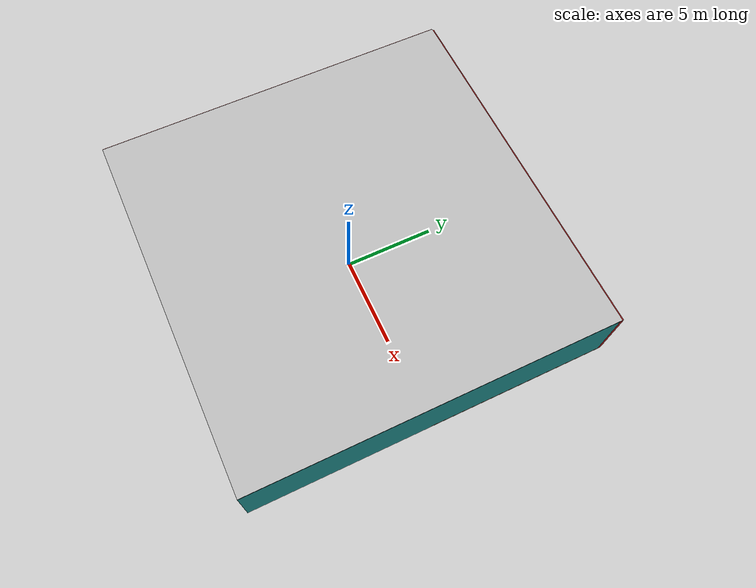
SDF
<sdf version="1.4">
 <world name="default">
  <physics type="ode">
   <max_step_size>0.001</max_step_size>
   <real_time_factor>1</real_time_factor>
   <real_time_update_rate>1000</real_time_update_rate>
   <gravity>0 0 -9.8</gravity>
  </physics>
  <scene><ambient>0.4 0.4 0.4 1</ambient><background>0.7 0.7 0.7 1</background><shadows>1</shadows></scene>
  <model name="Surrounding">
   <static>1</static>
   <link name="Ceiling">
    <collision name="Ceiling_Collision"><geometry><box><size>20 20 0.1</size></box></geometry></collision>
    <visual name="Ceiling_Visual">
     <geometry><box><size>20 20 0.1</size></box></geometry>
     <material>
      <script><uri>file://media/materials/scripts/gazebo.material</uri><name>Gazebo/Pioneer2Body</name></script>
     </material>
    </visual>
    <pose>0 0 4.05 0 0 0</pose>
   </link>
   <link name="Wall_South">
    <collision name="Wall_South_Collision">
     <geometry><box><size>20 0 4</size></box></geometry>
     <pose>0 0 2 0 -0 0</pose>
    </collision>
    <visual name="Wall_South_Visual">
     <pose>0 0 2 0 -0 0</pose>
     <geometry><box><size>20 0 4</size></box></geometry>
     <material>
      <script><uri>file://media/materials/scripts/gazebo.material</uri><name>Gazebo/CloudySky</name></script>
     </material>
    </visual>
    <velocity_decay><linear>0</linear><angular>0</angular></velocity_decay>
    <pose>0 -10 0 0 -0 0</pose>
   </link>
   <link name="Wall_East">
    <collision name="Wall_21_Collision">
     <geometry><box><size>20 0 4</size></box></geometry>
     <pose>0 0 2 0 -0 0</pose>
    </collision>
    <visual name="Wall_21_Visual">
     <pose>0 0 2 0 -0 0</pose>
     <geometry><box><size>20 0 4</size></box></geometry>
     <material>
      <script><uri>file://media/materials/scripts/gazebo.material</uri><name>Gazebo/TurquoiseGlow</name></script>
     </material>
    </visual>
    <velocity_decay><linear>0</linear><angular>0</angular></velocity_decay>
    <pose>10 0 0 0 -0 1.5708</pose>
   </link>
   <link name="Wall_North">
    <collision name="Wall_22_Collision">
     <geometry><box><size>20 0.2 4</size></box></geometry>
     <pose>0 0 2 0 -0 0</pose>
    </collision>
    <visual name="Wall_22_Visual">
     <pose>0 0 2 0 -0 0</pose>
     <geometry><box><size>20 0.2 4</size></box></geometry>
     <material>
      <script><uri>file://media/materials/scripts/gazebo.material</uri><name>Gazebo/RedBright</name></script>
     </material>
    </visual>
    <velocity_decay><linear>0</linear><angular>0</angular></velocity_decay>
    <pose>0 10 0 0 -0 0</pose>
   </link>
   <link name="Wall_West">
    <collision name="Wall_23_Collision">
     <geometry><box><size>20 0.2 4</size></box></geometry>
     <pose>0 0 2 0 -0 0</pose>
    </collision>
    <visual name="Wall_23_Visual">
     <pose>0 0 2 0 -0 0</pose>
     <geometry><box><size>20 0.2 4</size></box></geometry>
     <material>
      <script><uri>file://media/materials/scripts/gazebo.material</uri><name>Gazebo/RedTransparent</name></script>
     </material>
    </visual>
    <velocity_decay><linear>0</linear><angular>0</angular></velocity_decay>
    <pose>-10 0 0 0 0 -1.5708</pose>
   </link>
   <link name="Ground_link">
    <collision name="collision">
     <pose>0 0 .05 0 -0 0</pose>
     <geometry><box><size>20 20 0.1</size></box></geometry>
    </collision>
    <visual name="visual">
     <pose>0 0 .05 0 -0 0</pose>
     <geometry><box><size>20 20 0.1</size></box></geometry>
     <material>
      <script><uri>file://media/materials/scripts/gazebo.material</uri><name>Gazebo/Wood</name></script>
     </material>
    </visual>
   </link>
   <static>1</static>
  </model>
  <spherical_coordinates>
   <surface_model>EARTH_WGS84</surface_model>
   <latitude_deg>0</latitude_deg>
   <longitude_deg>0</longitude_deg>
   <elevation>0</elevation>
   <heading_deg>0</heading_deg>
  </spherical_coordinates>
  <light name="lightball_0" type="diffuse">
   <diffuse>0.8 0.8 0.8 1</diffuse>
   <specular>0.2 0.2 0.2 1</specular>
   <attenuation>
    <range>100</range>
    <constant>0.7</constant>
    <linear>0.01</linear>
    <quadratic>0.001</quadratic>
   </attenuation>
   <direction>-0.5 0.1 -0.9</direction>
   <pose>0.383939005725 2.88129209839 3.01789042759 0 0 0</pose>
  </light>
  <light name="lightball_1" type="diffuse">
   <diffuse>0.8 0.8 0.8 1</diffuse>
   <specular>0.2 0.2 0.2 1</specular>
   <attenuation>
    <range>100</range>
    <constant>0.7</constant>
    <linear>0.01</linear>
    <quadratic>0.001</quadratic>
   </attenuation>
   <direction>-0.5 0.1 -0.9</direction>
   <pose>2.99143732502 -8.41893501264 1.95275492716 0 0 0</pose>
  </light>
  <light name="lightball_2" type="diffuse">
   <diffuse>0.8 0.8 0.8 1</diffuse>
   <specular>0.2 0.2 0.2 1</specular>
   <attenuation>
    <range>100</range>
    <constant>0.7</constant>
    <linear>0.01</linear>
    <quadratic>0.001</quadratic>
   </attenuation>
   <direction>-0.5 0.1 -0.9</direction>
   <pose>9.98945999934 -0.932175593435 1.09963710982 0 0 0</pose>
  </light>
  <light name="lightball_3" type="diffuse">
   <diffuse>0.8 0.8 0.8 1</diffuse>
   <specular>0.2 0.2 0.2 1</specular>
   <attenuation>
    <range>100</range>
    <constant>0.7</constant>
    <linear>0.01</linear>
    <quadratic>0.001</quadratic>
   </attenuation>
   <direction>-0.5 0.1 -0.9</direction>
   <pose>-5.34675095001 8.18652905529 3.36990812757 0 0 0</pose>
  </light>
  <light name="lightball_4" type="diffuse">
   <diffuse>0.8 0.8 0.8 1</diffuse>
   <specular>0.2 0.2 0.2 1</specular>
   <attenuation>
    <range>100</range>
    <constant>0.7</constant>
    <linear>0.01</linear>
    <quadratic>0.001</quadratic>
   </attenuation>
   <direction>-0.5 0.1 -0.9</direction>
   <pose>-6.63607367522 -5.94665355101 0.899660516493 0 0 0</pose>
  </light>
  <light name="lightball_5" type="diffuse">
   <diffuse>0.8 0.8 0.8 1</diffuse>
   <specular>0.2 0.2 0.2 1</specular>
   <attenuation>
    <range>100</range>
    <constant>0.7</constant>
    <linear>0.01</linear>
    <quadratic>0.001</quadratic>
   </attenuation>
   <direction>-0.5 0.1 -0.9</direction>
   <pose>6.28281395811 5.87054156526 2.18418561498 0 0 0</pose>
  </light>
  <light name="lightball_6" type="diffuse">
   <diffuse>0.8 0.8 0.8 1</diffuse>
   <specular>0.2 0.2 0.2 1</specular>
   <attenuation>
    <range>100</range>
    <constant>0.7</constant>
    <linear>0.01</linear>
    <quadratic>0.001</quadratic>
   </attenuation>
   <direction>-0.5 0.1 -0.9</direction>
   <pose>2.86729382937 -0.376621553397 1.58803601216 0 0 0</pose>
  </light>
  <light name="lightball_7" type="diffuse">
   <diffuse>0.8 0.8 0.8 1</diffuse>
   <specular>0.2 0.2 0.2 1</specular>
   <attenuation>
    <range>100</range>
    <constant>0.7</constant>
    <linear>0.01</linear>
    <quadratic>0.001</quadratic>
   </attenuation>
   <direction>-0.5 0.1 -0.9</direction>
   <pose>5.50639689447 5.51785273447 2.8161328915 0 0 0</pose>
  </light>
  <light name="lightball_8" type="diffuse">
   <diffuse>0.8 0.8 0.8 1</diffuse>
   <specular>0.2 0.2 0.2 1</specular>
   <attenuation>
    <range>100</range>
    <constant>0.7</constant>
    <linear>0.01</linear>
    <quadratic>0.001</quadratic>
   </attenuation>
   <direction>-0.5 0.1 -0.9</direction>
   <pose>-3.6280243054 -9.16169679627 3.6676452413 0 0 0</pose>
  </light>
  <light name="lightball_9" type="diffuse">
   <diffuse>0.8 0.8 0.8 1</diffuse>
   <specular>0.2 0.2 0.2 1</specular>
   <attenuation>
    <range>100</range>
    <constant>0.7</constant>
    <linear>0.01</linear>
    <quadratic>0.001</quadratic>
   </attenuation>
   <direction>-0.5 0.1 -0.9</direction>
   <pose>-0.909095243646 -9.11722357584 1.76367537466 0 0 0</pose>
  </light>
  <light name="lightball_10" type="diffuse">
   <diffuse>0.8 0.8 0.8 1</diffuse>
   <specular>0.2 0.2 0.2 1</specular>
   <attenuation>
    <range>100</range>
    <constant>0.7</constant>
    <linear>0.01</linear>
    <quadratic>0.001</quadratic>
   </attenuation>
   <direction>-0.5 0.1 -0.9</direction>
   <pose>2.00783820087 4.31509483119 1.98556520295 0 0 0</pose>
  </light>
  <light name="lightball_11" type="diffuse">
   <diffuse>0.8 0.8 0.8 1</diffuse>
   <specular>0.2 0.2 0.2 1</specular>
   <attenuation>
    <range>100</range>
    <constant>0.7</constant>
    <linear>0.01</linear>
    <quadratic>0.001</quadratic>
   </attenuation>
   <direction>-0.5 0.1 -0.9</direction>
   <pose>-1.22311037459 6.88509421753 3.07614256487 0 0 0</pose>
  </light>
  <include><uri>model://cabinet</uri><pose>-0.756077191001 -5.06860964491 0 0 0 2.2010839098</pose></include>
  <include><uri>model://cabinet</uri><pose>-1.29594033551 -1.13221694113 0 0 0 0.0203948281018</pose></include>
 </world>
</sdf>

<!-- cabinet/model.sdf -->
<sdf version="1.5">
  <model name="cabinet">
    <static>true</static>
    <link name="cabinet_bottom_plate">
      <inertial>
        <pose>0 0 -1 0 0 0</pose>
        <inertia>
          <ixx>2.050000</ixx>
          <ixy>0</ixy>
          <ixz>0</ixz>
          <iyy>2.050000</iyy>
          <iyz>0</iyz>
          <izz>2.050000</izz>
        </inertia>
        <mass>25.000000</mass>
      </inertial>
      <collision name="cabinet_bottom_plate_geom">
        <pose>0 0 0.010000 0 0 0</pose>
        <geometry>
          <box>
            <size>0.450000 0.450000 0.020000</size>
          </box>
        </geometry>
      </collision>
      <visual name="cabinet_bottom_plate_geom_visual">
        <pose>0 0 0.010000 0 0 0</pose>
        <geometry>
          <box>
            <size>0.450000 0.450000 0.020000</size>
          </box>
        </geometry>
        <material>
          <script>
            <uri>model://media/materials/scripts/gazebo.material</uri>
            <name>Gazebo/Wood</name>
          </script>
        </material>
      </visual>
      <collision name="cabinet_bottom_plate_geom_cabinet_back_plate">
        <pose>0.235000 0 0.510000 0 0 0</pose>
        <geometry>
          <box>
            <size>0.020000 0.450000 1.020000</size>
          </box>
        </geometry>
      </collision>
      <visual name="cabinet_bottom_plate_geom_cabinet_back_plate_visual">
        <pose>0.235000 0 0.510000 0 0 0</pose>
        <geometry>
          <box>
            <size>0.020000 0.450000 1.020000</size>
          </box>
        </geometry>
        <material>
          <script>
            <uri>model://media/materials/scripts/gazebo.material</uri>
            <name>Gazebo/Wood</name>
          </script>
        </material>
      </visual>
      <collision name="cabinet_bottom_plate_geom_cabinet_left_plate">
        <pose>0 0.235000 0.510000 0 0 0</pose>
        <geometry>
          <box>
            <size>0.450000 0.020000 1.020000</size>
          </box>
        </geometry>
      </collision>
      <visual name="cabinet_bottom_plate_geom_cabinet_left_plate_visual">
        <pose>0 0.235000 0.510000 0 0 0</pose>
        <geometry>
          <box>
            <size>0.450000 0.020000 1.020000</size>
          </box>
        </geometry>
        <material>
          <script>
            <uri>model://media/materials/scripts/gazebo.material</uri>
            <name>Gazebo/Wood</name>
          </script>
        </material>
      </visual>
      <collision name="cabinet_bottom_plate_geom_cabinet_middle_plate">
        <pose>0 0 0.510000 0 0 0</pose>
        <geometry>
          <box>
            <size>0.450000 0.450000 0.020000</size>
          </box>
        </geometry>
      </collision>
      <visual name="cabinet_bottom_plate_geom_cabinet_middle_plate_visual">
        <pose>0 0 0.510000 0 0 0</pose>
        <geometry>
          <box>
            <size>0.450000 0.450000 0.020000</size>
          </box>
        </geometry>
        <material>
          <script>
            <uri>model://media/materials/scripts/gazebo.material</uri>
            <name>Gazebo/Wood</name>
          </script>
        </material>
      </visual>
      <collision name="cabinet_bottom_plate_geom_cabinet_right_plate">
        <pose>0 -0.235000 0.510000 0 0 0</pose>
        <geometry>
          <box>
            <size>0.450000 0.020000 1.020000</size>
          </box>
        </geometry>
      </collision>
      <visual name="cabinet_bottom_plate_geom_cabinet_right_plate_visual">
        <pose>0 -0.235000 0.510000 0 0 0</pose>
        <geometry>
          <box>
            <size>0.450000 0.020000 1.020000</size>
          </box>
        </geometry>
        <material>
          <script>
            <uri>model://media/materials/scripts/gazebo.material</uri>
            <name>Gazebo/Wood</name>
          </script>
        </material>
      </visual>
      <collision name="cabinet_bottom_plate_geom_cabinet_top_plate">
        <pose>0 0 1.010000 0 0 0</pose>
        <geometry>
          <box>
            <size>0.450000 0.450000 0.020000</size>
          </box>
        </geometry>
      </collision>
      <visual name="cabinet_bottom_plate_geom_cabinet_top_plate_visual">
        <pose>0 0 1.010000 0 0 0</pose>
        <geometry>
          <box>
            <size>0.450000 0.450000 0.020000</size>
          </box>
        </geometry>
        <material>
          <script>
            <uri>model://media/materials/scripts/gazebo.material</uri>
            <name>Gazebo/Wood</name>
          </script>
        </material>
      </visual>
    </link>
  </model>
</sdf>
